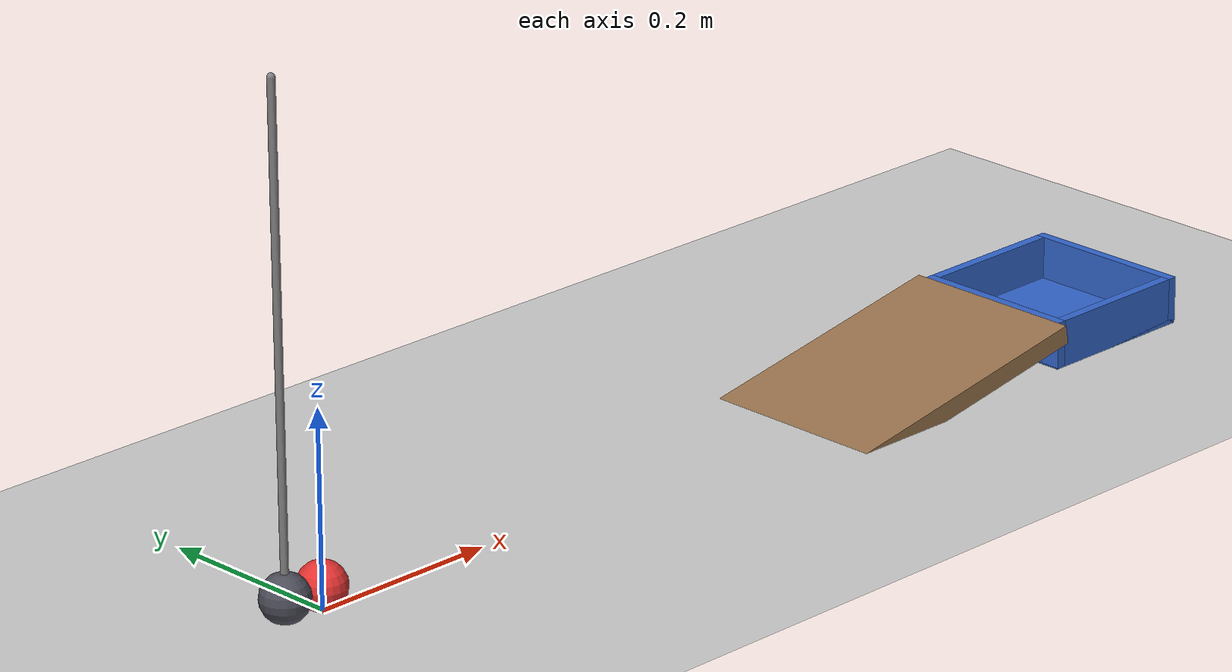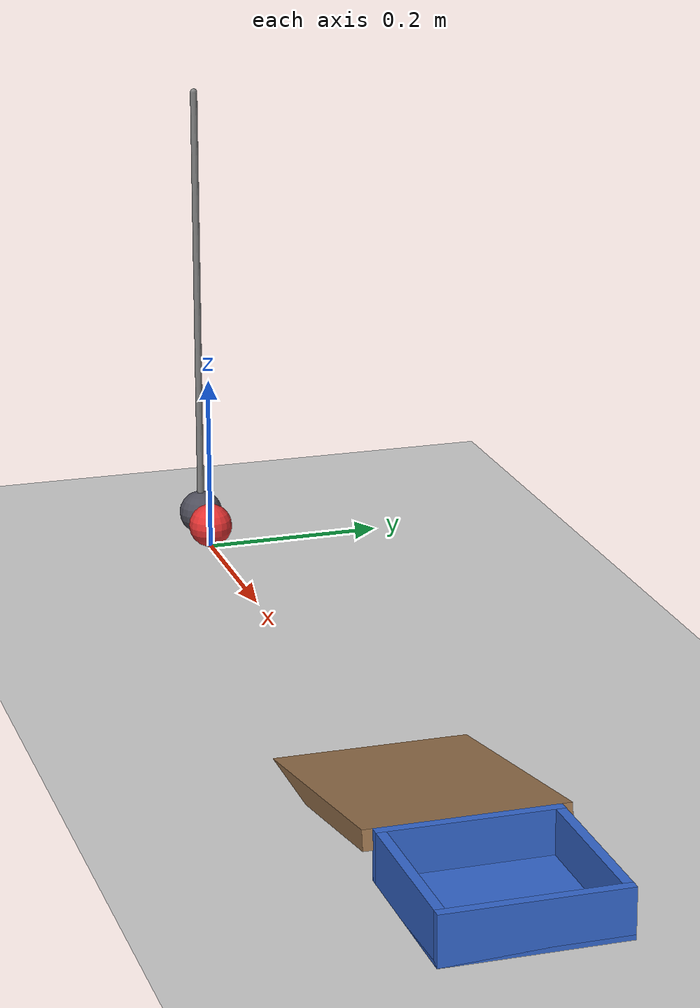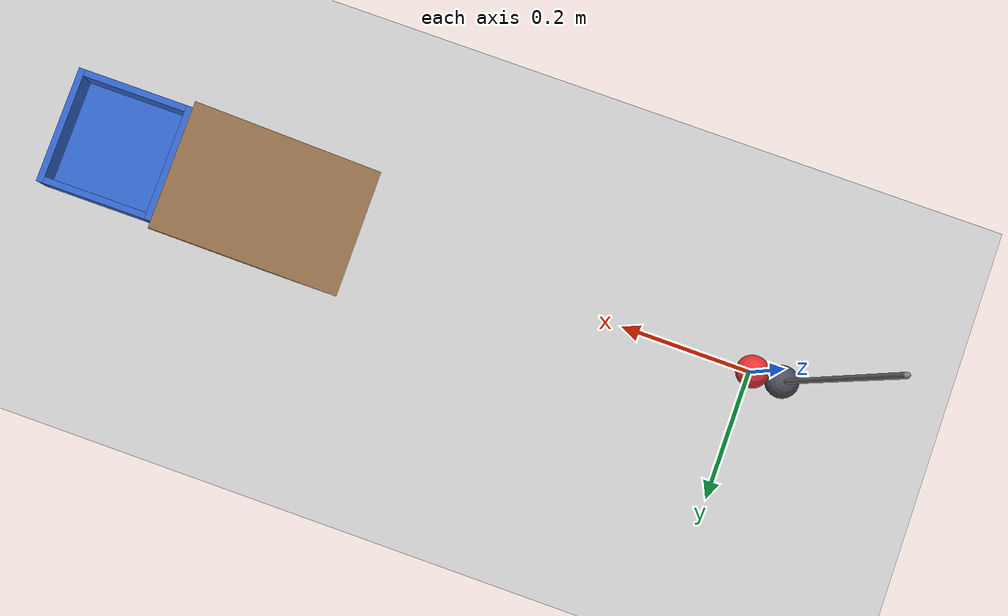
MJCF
<mujoco model="pendulum_ball_cup">
  <option timestep="0.002"/>
  <worldbody>
    <light name="sun" pos="0.5 -1 2" dir="0 0.4 -1" diffuse="0.8 0.8 0.8"/>
    <geom name="floor" type="plane" size="5 5 0.1" rgba="0.8 0.8 0.8 1"/>

    <body name="pendulum" pos="-0.045 0 0.527">
      <joint name="pendulum_hinge" type="hinge" axis="0 1 0" pos="0 0 0"/>
      <geom name="pendulum_rod" type="capsule" fromto="0 0 0 0 0 -0.475" size="0.004" density="2700" rgba="0.5 0.5 0.5 1"/>
      <geom name="pendulum_bob" type="sphere" pos="0 0 -0.5" size="0.025" density="7800" rgba="0.3 0.3 0.35 1"/>
    </body>

    <body name="ball" pos="0 0 0.025">
      <freejoint name="ball_free"/>
      <geom name="ball" type="sphere" size="0.025" density="1000" rgba="0.9 0.2 0.2 1"/>
    </body>

    <body name="ramp" pos="0 0 0">
      <geom name="ramp" type="box" pos="0.7601 0 0.01341" euler="0 -10 0" size="0.154 0.1 0.01" rgba="0.6 0.45 0.3 1"/>
    </body>

    <body name="cup" pos="1 0 0">
      <geom name="cup_base" type="box" pos="0 0 0.0025" size="0.09 0.09 0.0025" condim="6" friction="1 0.005 0.003" rgba="0.2 0.4 0.8 1"/>
      <geom name="cup_wall_near" type="box" pos="-0.085 0 0.025" size="0.005 0.09 0.025" condim="6" friction="1 0.005 0.003" rgba="0.2 0.4 0.8 1"/>
      <geom name="cup_wall_far" type="box" pos="0.085 0 0.025" size="0.005 0.09 0.025" condim="6" friction="1 0.005 0.003" rgba="0.2 0.4 0.8 1"/>
      <geom name="cup_wall_left" type="box" pos="0 0.085 0.025" size="0.08 0.005 0.025" condim="6" friction="1 0.005 0.003" rgba="0.2 0.4 0.8 1"/>
      <geom name="cup_wall_right" type="box" pos="0 -0.085 0.025" size="0.08 0.005 0.025" condim="6" friction="1 0.005 0.003" rgba="0.2 0.4 0.8 1"/>
    </body>
  </worldbody>

  <keyframe>
    <key name="start" qpos="0.684 0 0 0.025 1 0 0 0"/>
  </keyframe>
</mujoco>
